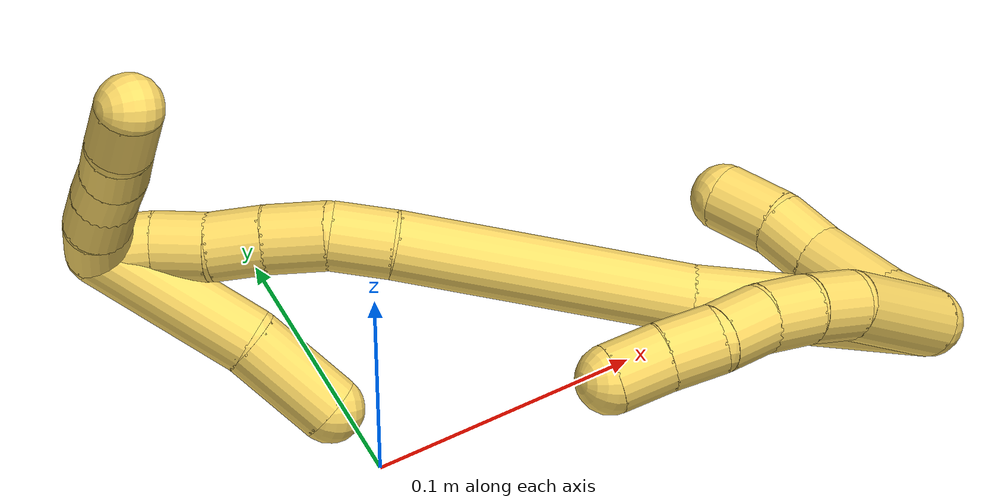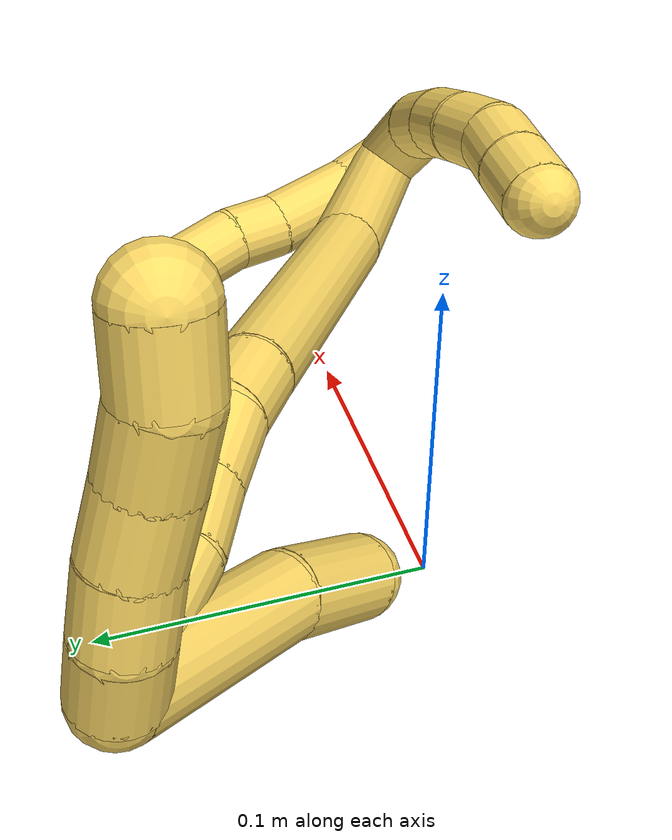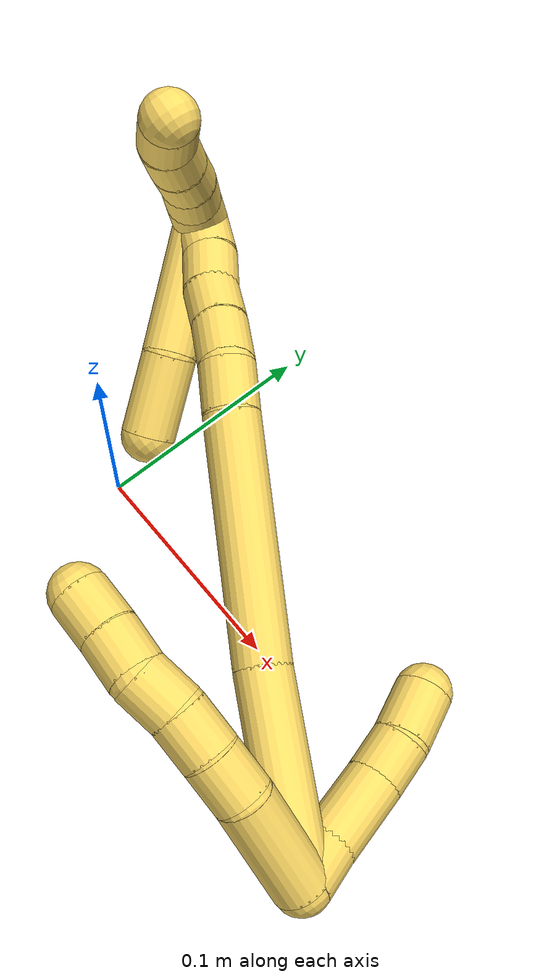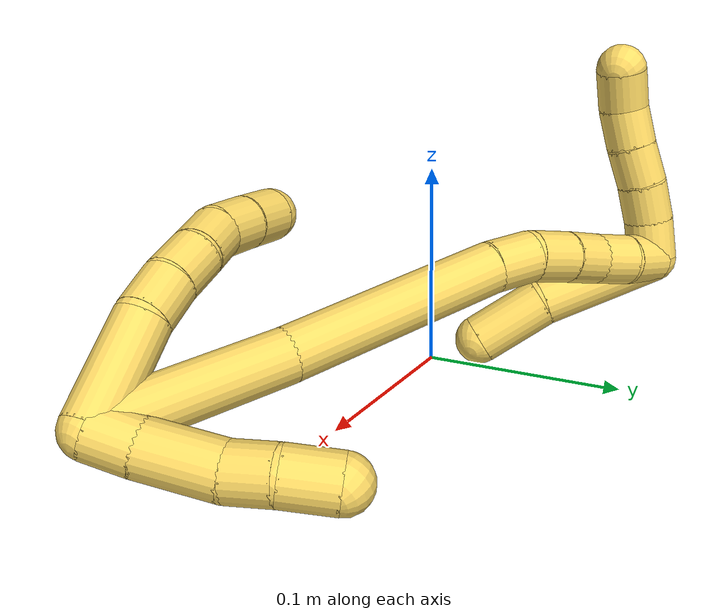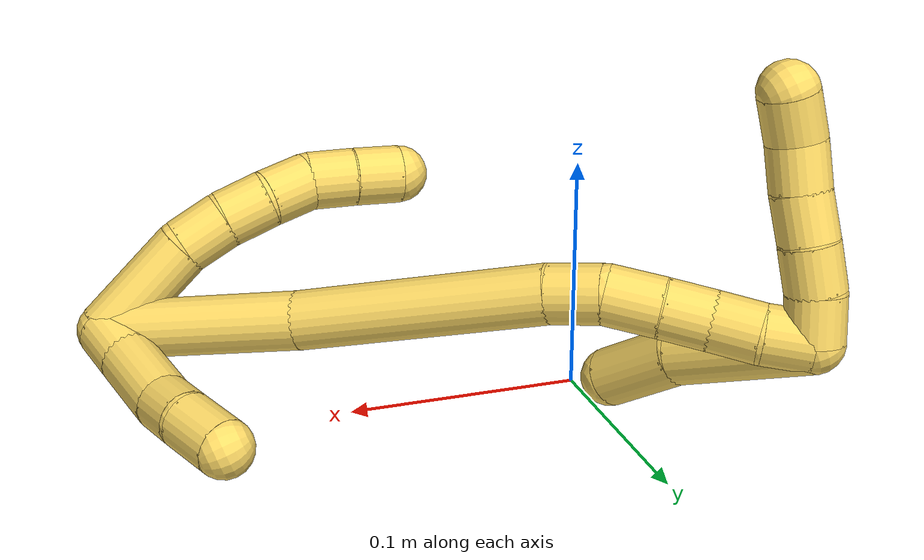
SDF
<sdf version="1.7">
 <world name="default">
  <model name="5">
   <static>0</static>
   <link name="5">
    <collision name="collision-cylinder-e_1_2_8">
     <pose>0.004693 -0.008421 -0.022221 2.77933 0.195005 0.981102</pose>
     <geometry><cylinder><radius>0.0125</radius><length>0.048444</length></cylinder></geometry>
     <surface>
      <friction><ode><mu>1.16</mu><mu2>1.16</mu2><slip1>0</slip1><slip2>0</slip2></ode></friction>
      <contact><ode><kp>1e+06</kp><kd>1</kd><max_vel>0</max_vel><min_depth>0.001</min_depth></ode></contact>
     </surface>
    </collision>
    <visual name="visual-cylinder-e_1_2_8">
     <pose>0.004693 -0.008421 -0.022221 2.77933 0.195005 0.981102</pose>
     <geometry><cylinder><radius>0.0125</radius><length>0.048444</length></cylinder></geometry>
     <material><ambient>1 0.858824 0.4 1</ambient></material>
    </visual>
    <collision name="collision-cylinder-e_2_8_9">
     <pose>0.010659 -0.017921 -0.054813 3.03797 0.121345 1.72838</pose>
     <geometry><cylinder><radius>0.0125</radius><length>0.02101</length></cylinder></geometry>
     <surface>
      <friction><ode><mu>1.16</mu><mu2>1.16</mu2><slip1>0</slip1><slip2>0</slip2></ode></friction>
      <contact><ode><kp>1e+06</kp><kd>1</kd><max_vel>0</max_vel><min_depth>0.001</min_depth></ode></contact>
     </surface>
    </collision>
    <visual name="visual-cylinder-e_2_8_9">
     <pose>0.010659 -0.017921 -0.054813 3.03797 0.121345 1.72838</pose>
     <geometry><cylinder><radius>0.0125</radius><length>0.02101</length></cylinder></geometry>
     <material><ambient>1 0.858824 0.4 1</ambient></material>
    </visual>
    <collision name="collision-cylinder-e_3_9_10">
     <pose>0.012515 -0.01875 -0.075382 -3.11716 0.057271 -2.33535</pose>
     <geometry><cylinder><radius>0.0125</radius><length>0.020433</length></cylinder></geometry>
     <surface>
      <friction><ode><mu>1.16</mu><mu2>1.16</mu2><slip1>0</slip1><slip2>0</slip2></ode></friction>
      <contact><ode><kp>1e+06</kp><kd>1</kd><max_vel>0</max_vel><min_depth>0.001</min_depth></ode></contact>
     </surface>
    </collision>
    <visual name="visual-cylinder-e_3_9_10">
     <pose>0.012515 -0.01875 -0.075382 -3.11716 0.057271 -2.33535</pose>
     <geometry><cylinder><radius>0.0125</radius><length>0.020433</length></cylinder></geometry>
     <material><ambient>1 0.858824 0.4 1</ambient></material>
    </visual>
    <collision name="collision-cylinder-e_4_10_11">
     <pose>0.014581 -0.016701 -0.095332 -2.95903 0.148238 -1.36306</pose>
     <geometry><cylinder><radius>0.0125</radius><length>0.020057</length></cylinder></geometry>
     <surface>
      <friction><ode><mu>1.16</mu><mu2>1.16</mu2><slip1>0</slip1><slip2>0</slip2></ode></friction>
      <contact><ode><kp>1e+06</kp><kd>1</kd><max_vel>0</max_vel><min_depth>0.001</min_depth></ode></contact>
     </surface>
    </collision>
    <visual name="visual-cylinder-e_4_10_11">
     <pose>0.014581 -0.016701 -0.095332 -2.95903 0.148238 -1.36306</pose>
     <geometry><cylinder><radius>0.0125</radius><length>0.020057</length></cylinder></geometry>
     <material><ambient>1 0.858824 0.4 1</ambient></material>
    </visual>
    <collision name="collision-cylinder-e_5_11_12">
     <pose>0.014359 -0.011988 -0.114521 -2.8423 -0.170786 1.03273</pose>
     <geometry><cylinder><radius>0.0125</radius><length>0.020041</length></cylinder></geometry>
     <surface>
      <friction><ode><mu>1.16</mu><mu2>1.16</mu2><slip1>0</slip1><slip2>0</slip2></ode></friction>
      <contact><ode><kp>1e+06</kp><kd>1</kd><max_vel>0</max_vel><min_depth>0.001</min_depth></ode></contact>
     </surface>
    </collision>
    <visual name="visual-cylinder-e_5_11_12">
     <pose>0.014359 -0.011988 -0.114521 -2.8423 -0.170786 1.03273</pose>
     <geometry><cylinder><radius>0.0125</radius><length>0.020041</length></cylinder></geometry>
     <material><ambient>1 0.858824 0.4 1</ambient></material>
    </visual>
    <collision name="collision-cylinder-e_6_12_6">
     <pose>0.011223 -0.005603 -0.133232 -2.78323 -0.143649 0.756228</pose>
     <geometry><cylinder><radius>0.0125</radius><length>0.020015</length></cylinder></geometry>
     <surface>
      <friction><ode><mu>1.16</mu><mu2>1.16</mu2><slip1>0</slip1><slip2>0</slip2></ode></friction>
      <contact><ode><kp>1e+06</kp><kd>1</kd><max_vel>0</max_vel><min_depth>0.001</min_depth></ode></contact>
     </surface>
    </collision>
    <visual name="visual-cylinder-e_6_12_6">
     <pose>0.011223 -0.005603 -0.133232 -2.78323 -0.143649 0.756228</pose>
     <geometry><cylinder><radius>0.0125</radius><length>0.020015</length></cylinder></geometry>
     <material><ambient>1 0.858824 0.4 1</ambient></material>
    </visual>
    <collision name="collision-cylinder-e_1_2_13">
     <pose>-0.010016 0.000208 -0.002149 -3.04506 -1.35851 3.02208</pose>
     <geometry><cylinder><radius>0.0125</radius><length>0.020491</length></cylinder></geometry>
     <surface>
      <friction><ode><mu>1.16</mu><mu2>1.16</mu2><slip1>0</slip1><slip2>0</slip2></ode></friction>
      <contact><ode><kp>1e+06</kp><kd>1</kd><max_vel>0</max_vel><min_depth>0.001</min_depth></ode></contact>
     </surface>
    </collision>
    <visual name="visual-cylinder-e_1_2_13">
     <pose>-0.010016 0.000208 -0.002149 -3.04506 -1.35851 3.02208</pose>
     <geometry><cylinder><radius>0.0125</radius><length>0.020491</length></cylinder></geometry>
     <material><ambient>1 0.858824 0.4 1</ambient></material>
    </visual>
    <collision name="collision-cylinder-e_2_13_14">
     <pose>-0.036974 -0.001531 -0.007826 2.63728 -1.33726 -2.51111</pose>
     <geometry><cylinder><radius>0.0125</radius><length>0.03483</length></cylinder></geometry>
     <surface>
      <friction><ode><mu>1.16</mu><mu2>1.16</mu2><slip1>0</slip1><slip2>0</slip2></ode></friction>
      <contact><ode><kp>1e+06</kp><kd>1</kd><max_vel>0</max_vel><min_depth>0.001</min_depth></ode></contact>
     </surface>
    </collision>
    <visual name="visual-cylinder-e_2_13_14">
     <pose>-0.036974 -0.001531 -0.007826 2.63728 -1.33726 -2.51111</pose>
     <geometry><cylinder><radius>0.0125</radius><length>0.03483</length></cylinder></geometry>
     <material><ambient>1 0.858824 0.4 1</ambient></material>
    </visual>
    <collision name="collision-cylinder-e_3_14_15">
     <pose>-0.063234 -0.006376 -0.014413 2.38323 -1.14618 -2.03529</pose>
     <geometry><cylinder><radius>0.0125</radius><length>0.020453</length></cylinder></geometry>
     <surface>
      <friction><ode><mu>1.16</mu><mu2>1.16</mu2><slip1>0</slip1><slip2>0</slip2></ode></friction>
      <contact><ode><kp>1e+06</kp><kd>1</kd><max_vel>0</max_vel><min_depth>0.001</min_depth></ode></contact>
     </surface>
    </collision>
    <visual name="visual-cylinder-e_3_14_15">
     <pose>-0.063234 -0.006376 -0.014413 2.38323 -1.14618 -2.03529</pose>
     <geometry><cylinder><radius>0.0125</radius><length>0.020453</length></cylinder></geometry>
     <material><ambient>1 0.858824 0.4 1</ambient></material>
    </visual>
    <collision name="collision-cylinder-e_4_15_5">
     <pose>-0.083726 -0.010364 -0.022021 2.90631 -1.17428 -2.79004</pose>
     <geometry><cylinder><radius>0.0125</radius><length>0.024226</length></cylinder></geometry>
     <surface>
      <friction><ode><mu>1.16</mu><mu2>1.16</mu2><slip1>0</slip1><slip2>0</slip2></ode></friction>
      <contact><ode><kp>1e+06</kp><kd>1</kd><max_vel>0</max_vel><min_depth>0.001</min_depth></ode></contact>
     </surface>
    </collision>
    <visual name="visual-cylinder-e_4_15_5">
     <pose>-0.083726 -0.010364 -0.022021 2.90631 -1.17428 -2.79004</pose>
     <geometry><cylinder><radius>0.0125</radius><length>0.024226</length></cylinder></geometry>
     <material><ambient>1 0.858824 0.4 1</ambient></material>
    </visual>
    <collision name="collision-cylinder-e_1_2_16">
     <pose>-0.020863 -0.000264 -0.037641 3.13457 -0.506096 -3.11446</pose>
     <geometry><cylinder><radius>0.0125</radius><length>0.086075</length></cylinder></geometry>
     <surface>
      <friction><ode><mu>1.16</mu><mu2>1.16</mu2><slip1>0</slip1><slip2>0</slip2></ode></friction>
      <contact><ode><kp>1e+06</kp><kd>1</kd><max_vel>0</max_vel><min_depth>0.001</min_depth></ode></contact>
     </surface>
    </collision>
    <visual name="visual-cylinder-e_1_2_16">
     <pose>-0.020863 -0.000264 -0.037641 3.13457 -0.506096 -3.11446</pose>
     <geometry><cylinder><radius>0.0125</radius><length>0.086075</length></cylinder></geometry>
     <material><ambient>1 0.858824 0.4 1</ambient></material>
    </visual>
    <collision name="collision-cylinder-e_2_16_17">
     <pose>-0.067917 -0.005711 -0.121914 3.0309 -0.509131 -2.72201</pose>
     <geometry><cylinder><radius>0.0125</radius><length>0.107468</length></cylinder></geometry>
     <surface>
      <friction><ode><mu>1.16</mu><mu2>1.16</mu2><slip1>0</slip1><slip2>0</slip2></ode></friction>
      <contact><ode><kp>1e+06</kp><kd>1</kd><max_vel>0</max_vel><min_depth>0.001</min_depth></ode></contact>
     </surface>
    </collision>
    <visual name="visual-cylinder-e_2_16_17">
     <pose>-0.067917 -0.005711 -0.121914 3.0309 -0.509131 -2.72201</pose>
     <geometry><cylinder><radius>0.0125</radius><length>0.107468</length></cylinder></geometry>
     <material><ambient>1 0.858824 0.4 1</ambient></material>
    </visual>
    <collision name="collision-cylinder-e_3_17_18">
     <pose>-0.100462 -0.011109 -0.178002 3.11888 -0.591555 -3.06707</pose>
     <geometry><cylinder><radius>0.0125</radius><length>0.022789</length></cylinder></geometry>
     <surface>
      <friction><ode><mu>1.16</mu><mu2>1.16</mu2><slip1>0</slip1><slip2>0</slip2></ode></friction>
      <contact><ode><kp>1e+06</kp><kd>1</kd><max_vel>0</max_vel><min_depth>0.001</min_depth></ode></contact>
     </surface>
    </collision>
    <visual name="visual-cylinder-e_3_17_18">
     <pose>-0.100462 -0.011109 -0.178002 3.11888 -0.591555 -3.06707</pose>
     <geometry><cylinder><radius>0.0125</radius><length>0.022789</length></cylinder></geometry>
     <material><ambient>1 0.858824 0.4 1</ambient></material>
    </visual>
    <collision name="collision-cylinder-e_4_18_19">
     <pose>-0.113845 -0.008606 -0.196126 -2.83771 -0.658524 2.29901</pose>
     <geometry><cylinder><radius>0.0125</radius><length>0.022972</length></cylinder></geometry>
     <surface>
      <friction><ode><mu>1.16</mu><mu2>1.16</mu2><slip1>0</slip1><slip2>0</slip2></ode></friction>
      <contact><ode><kp>1e+06</kp><kd>1</kd><max_vel>0</max_vel><min_depth>0.001</min_depth></ode></contact>
     </surface>
    </collision>
    <visual name="visual-cylinder-e_4_18_19">
     <pose>-0.113845 -0.008606 -0.196126 -2.83771 -0.658524 2.29901</pose>
     <geometry><cylinder><radius>0.0125</radius><length>0.022972</length></cylinder></geometry>
     <material><ambient>1 0.858824 0.4 1</ambient></material>
    </visual>
    <collision name="collision-cylinder-e_5_19_20">
     <pose>-0.12681 -0.002856 -0.212506 -2.76702 -0.621585 2.07554</pose>
     <geometry><cylinder><radius>0.0125</radius><length>0.020386</length></cylinder></geometry>
     <surface>
      <friction><ode><mu>1.16</mu><mu2>1.16</mu2><slip1>0</slip1><slip2>0</slip2></ode></friction>
      <contact><ode><kp>1e+06</kp><kd>1</kd><max_vel>0</max_vel><min_depth>0.001</min_depth></ode></contact>
     </surface>
    </collision>
    <visual name="visual-cylinder-e_5_19_20">
     <pose>-0.12681 -0.002856 -0.212506 -2.76702 -0.621585 2.07554</pose>
     <geometry><cylinder><radius>0.0125</radius><length>0.020386</length></cylinder></geometry>
     <material><ambient>1 0.858824 0.4 1</ambient></material>
    </visual>
    <collision name="collision-cylinder-e_6_20_21">
     <pose>-0.139617 0.001903 -0.227386 -2.90518 -0.750171 2.55569</pose>
     <geometry><cylinder><radius>0.0125</radius><length>0.020157</length></cylinder></geometry>
     <surface>
      <friction><ode><mu>1.16</mu><mu2>1.16</mu2><slip1>0</slip1><slip2>0</slip2></ode></friction>
      <contact><ode><kp>1e+06</kp><kd>1</kd><max_vel>0</max_vel><min_depth>0.001</min_depth></ode></contact>
     </surface>
    </collision>
    <visual name="visual-cylinder-e_6_20_21">
     <pose>-0.139617 0.001903 -0.227386 -2.90518 -0.750171 2.55569</pose>
     <geometry><cylinder><radius>0.0125</radius><length>0.020157</length></cylinder></geometry>
     <material><ambient>1 0.858824 0.4 1</ambient></material>
    </visual>
    <collision name="collision-cylinder-e_7_21_1">
     <pose>-0.151995 0.005958 -0.242665 -2.86204 -0.578225 2.25795</pose>
     <geometry><cylinder><radius>0.0125</radius><length>0.020153</length></cylinder></geometry>
     <surface>
      <friction><ode><mu>1.16</mu><mu2>1.16</mu2><slip1>0</slip1><slip2>0</slip2></ode></friction>
      <contact><ode><kp>1e+06</kp><kd>1</kd><max_vel>0</max_vel><min_depth>0.001</min_depth></ode></contact>
     </surface>
    </collision>
    <visual name="visual-cylinder-e_7_21_1">
     <pose>-0.151995 0.005958 -0.242665 -2.86204 -0.578225 2.25795</pose>
     <geometry><cylinder><radius>0.0125</radius><length>0.020153</length></cylinder></geometry>
     <material><ambient>1 0.858824 0.4 1</ambient></material>
    </visual>
    <collision name="collision-cylinder-e_1_1_22">
     <pose>-0.137632 0.020119 -0.229745 -0.512496 0.68888 -0.187435</pose>
     <geometry><cylinder><radius>0.0125</radius><length>0.062518</length></cylinder></geometry>
     <surface>
      <friction><ode><mu>1.16</mu><mu2>1.16</mu2><slip1>0</slip1><slip2>0</slip2></ode></friction>
      <contact><ode><kp>1e+06</kp><kd>1</kd><max_vel>0</max_vel><min_depth>0.001</min_depth></ode></contact>
     </surface>
    </collision>
    <visual name="visual-cylinder-e_1_1_22">
     <pose>-0.137632 0.020119 -0.229745 -0.512496 0.68888 -0.187435</pose>
     <geometry><cylinder><radius>0.0125</radius><length>0.062518</length></cylinder></geometry>
     <material><ambient>1 0.858824 0.4 1</ambient></material>
    </visual>
    <collision name="collision-cylinder-e_2_22_4">
     <pose>-0.107941 0.042394 -0.196642 -0.713134 0.551547 -0.210041</pose>
     <geometry><cylinder><radius>0.0125</radius><length>0.037482</length></cylinder></geometry>
     <surface>
      <friction><ode><mu>1.16</mu><mu2>1.16</mu2><slip1>0</slip1><slip2>0</slip2></ode></friction>
      <contact><ode><kp>1e+06</kp><kd>1</kd><max_vel>0</max_vel><min_depth>0.001</min_depth></ode></contact>
     </surface>
    </collision>
    <visual name="visual-cylinder-e_2_22_4">
     <pose>-0.107941 0.042394 -0.196642 -0.713134 0.551547 -0.210041</pose>
     <geometry><cylinder><radius>0.0125</radius><length>0.037482</length></cylinder></geometry>
     <material><ambient>1 0.858824 0.4 1</ambient></material>
    </visual>
    <collision name="collision-cylinder-e_1_1_23">
     <pose>-0.152521 0.000506 -0.254603 2.02789 0.52142 0.809688</pose>
     <geometry><cylinder><radius>0.0125</radius><length>0.02</length></cylinder></geometry>
     <surface>
      <friction><ode><mu>1.16</mu><mu2>1.16</mu2><slip1>0</slip1><slip2>0</slip2></ode></friction>
      <contact><ode><kp>1e+06</kp><kd>1</kd><max_vel>0</max_vel><min_depth>0.001</min_depth></ode></contact>
     </surface>
    </collision>
    <visual name="visual-cylinder-e_1_1_23">
     <pose>-0.152521 0.000506 -0.254603 2.02789 0.52142 0.809688</pose>
     <geometry><cylinder><radius>0.0125</radius><length>0.02</length></cylinder></geometry>
     <material><ambient>1 0.858824 0.4 1</ambient></material>
    </visual>
    <collision name="collision-cylinder-e_2_23_24">
     <pose>-0.141986 -0.015302 -0.260605 1.83547 0.588833 0.754718</pose>
     <geometry><cylinder><radius>0.0125</radius><length>0.02</length></cylinder></geometry>
     <surface>
      <friction><ode><mu>1.16</mu><mu2>1.16</mu2><slip1>0</slip1><slip2>0</slip2></ode></friction>
      <contact><ode><kp>1e+06</kp><kd>1</kd><max_vel>0</max_vel><min_depth>0.001</min_depth></ode></contact>
     </surface>
    </collision>
    <visual name="visual-cylinder-e_2_23_24">
     <pose>-0.141986 -0.015302 -0.260605 1.83547 0.588833 0.754718</pose>
     <geometry><cylinder><radius>0.0125</radius><length>0.02</length></cylinder></geometry>
     <material><ambient>1 0.858824 0.4 1</ambient></material>
    </visual>
    <collision name="collision-cylinder-e_3_24_25">
     <pose>-0.13011 -0.030727 -0.265079 1.87199 0.684397 0.900977</pose>
     <geometry><cylinder><radius>0.0125</radius><length>0.02</length></cylinder></geometry>
     <surface>
      <friction><ode><mu>1.16</mu><mu2>1.16</mu2><slip1>0</slip1><slip2>0</slip2></ode></friction>
      <contact><ode><kp>1e+06</kp><kd>1</kd><max_vel>0</max_vel><min_depth>0.001</min_depth></ode></contact>
     </surface>
    </collision>
    <visual name="visual-cylinder-e_3_24_25">
     <pose>-0.13011 -0.030727 -0.265079 1.87199 0.684397 0.900977</pose>
     <geometry><cylinder><radius>0.0125</radius><length>0.02</length></cylinder></geometry>
     <material><ambient>1 0.858824 0.4 1</ambient></material>
    </visual>
    <collision name="collision-cylinder-e_4_25_26">
     <pose>-0.11791 -0.045668 -0.270304 1.94103 0.62841 0.886443</pose>
     <geometry><cylinder><radius>0.0125</radius><length>0.02</length></cylinder></geometry>
     <surface>
      <friction><ode><mu>1.16</mu><mu2>1.16</mu2><slip1>0</slip1><slip2>0</slip2></ode></friction>
      <contact><ode><kp>1e+06</kp><kd>1</kd><max_vel>0</max_vel><min_depth>0.001</min_depth></ode></contact>
     </surface>
    </collision>
    <visual name="visual-cylinder-e_4_25_26">
     <pose>-0.11791 -0.045668 -0.270304 1.94103 0.62841 0.886443</pose>
     <geometry><cylinder><radius>0.0125</radius><length>0.02</length></cylinder></geometry>
     <material><ambient>1 0.858824 0.4 1</ambient></material>
    </visual>
    <collision name="collision-cylinder-e_5_26_3">
     <pose>-0.107785 -0.062166 -0.274558 1.71786 0.43849 0.505486</pose>
     <geometry><cylinder><radius>0.0125</radius><length>0.02</length></cylinder></geometry>
     <surface>
      <friction><ode><mu>1.16</mu><mu2>1.16</mu2><slip1>0</slip1><slip2>0</slip2></ode></friction>
      <contact><ode><kp>1e+06</kp><kd>1</kd><max_vel>0</max_vel><min_depth>0.001</min_depth></ode></contact>
     </surface>
    </collision>
    <visual name="visual-cylinder-e_5_26_3">
     <pose>-0.107785 -0.062166 -0.274558 1.71786 0.43849 0.505486</pose>
     <geometry><cylinder><radius>0.0125</radius><length>0.02</length></cylinder></geometry>
     <material><ambient>1 0.858824 0.4 1</ambient></material>
    </visual>
    <collision name="collision-sphere-3">
     <pose>-0.103539 -0.071122 -0.275885 0 -0 0</pose>
     <geometry><sphere><radius>0.0125</radius></sphere></geometry>
     <surface>
      <friction><ode><mu>1.16</mu><mu2>1.16</mu2><slip1>0</slip1><slip2>0</slip2></ode></friction>
      <contact><ode><kp>1e+06</kp><kd>1</kd><max_vel>0</max_vel><min_depth>0.001</min_depth></ode></contact>
     </surface>
    </collision>
    <visual name="visual-sphere-3">
     <pose>-0.103539 -0.071122 -0.275885 0 -0 0</pose>
     <geometry><sphere><radius>0.0125</radius></sphere></geometry>
     <material><ambient>1 0.858824 0.4 1</ambient></material>
    </visual>
    <collision name="collision-sphere-26">
     <pose>-0.112031 -0.053209 -0.273231 0 -0 0</pose>
     <geometry><sphere><radius>0.0125</radius></sphere></geometry>
     <surface>
      <friction><ode><mu>1.16</mu><mu2>1.16</mu2><slip1>0</slip1><slip2>0</slip2></ode></friction>
      <contact><ode><kp>1e+06</kp><kd>1</kd><max_vel>0</max_vel><min_depth>0.001</min_depth></ode></contact>
     </surface>
    </collision>
    <visual name="visual-sphere-26">
     <pose>-0.112031 -0.053209 -0.273231 0 -0 0</pose>
     <geometry><sphere><radius>0.0125</radius></sphere></geometry>
     <material><ambient>1 0.858824 0.4 1</ambient></material>
    </visual>
    <collision name="collision-sphere-25">
     <pose>-0.123788 -0.038126 -0.267377 0 -0 0</pose>
     <geometry><sphere><radius>0.0125</radius></sphere></geometry>
     <surface>
      <friction><ode><mu>1.16</mu><mu2>1.16</mu2><slip1>0</slip1><slip2>0</slip2></ode></friction>
      <contact><ode><kp>1e+06</kp><kd>1</kd><max_vel>0</max_vel><min_depth>0.001</min_depth></ode></contact>
     </surface>
    </collision>
    <visual name="visual-sphere-25">
     <pose>-0.123788 -0.038126 -0.267377 0 -0 0</pose>
     <geometry><sphere><radius>0.0125</radius></sphere></geometry>
     <material><ambient>1 0.858824 0.4 1</ambient></material>
    </visual>
    <collision name="collision-sphere-24">
     <pose>-0.136432 -0.023328 -0.26278 0 -0 0</pose>
     <geometry><sphere><radius>0.0125</radius></sphere></geometry>
     <surface>
      <friction><ode><mu>1.16</mu><mu2>1.16</mu2><slip1>0</slip1><slip2>0</slip2></ode></friction>
      <contact><ode><kp>1e+06</kp><kd>1</kd><max_vel>0</max_vel><min_depth>0.001</min_depth></ode></contact>
     </surface>
    </collision>
    <visual name="visual-sphere-24">
     <pose>-0.136432 -0.023328 -0.26278 0 -0 0</pose>
     <geometry><sphere><radius>0.0125</radius></sphere></geometry>
     <material><ambient>1 0.858824 0.4 1</ambient></material>
    </visual>
    <collision name="collision-sphere-23">
     <pose>-0.14754 -0.007275 -0.258429 0 -0 0</pose>
     <geometry><sphere><radius>0.0125</radius></sphere></geometry>
     <surface>
      <friction><ode><mu>1.16</mu><mu2>1.16</mu2><slip1>0</slip1><slip2>0</slip2></ode></friction>
      <contact><ode><kp>1e+06</kp><kd>1</kd><max_vel>0</max_vel><min_depth>0.001</min_depth></ode></contact>
     </surface>
    </collision>
    <visual name="visual-sphere-23">
     <pose>-0.14754 -0.007275 -0.258429 0 -0 0</pose>
     <geometry><sphere><radius>0.0125</radius></sphere></geometry>
     <material><ambient>1 0.858824 0.4 1</ambient></material>
    </visual>
    <collision name="collision-sphere-4">
     <pose>-0.09812 0.052837 -0.18457 0 -0 0</pose>
     <geometry><sphere><radius>0.0125</radius></sphere></geometry>
     <surface>
      <friction><ode><mu>1.16</mu><mu2>1.16</mu2><slip1>0</slip1><slip2>0</slip2></ode></friction>
      <contact><ode><kp>1e+06</kp><kd>1</kd><max_vel>0</max_vel><min_depth>0.001</min_depth></ode></contact>
     </surface>
    </collision>
    <visual name="visual-sphere-4">
     <pose>-0.09812 0.052837 -0.18457 0 -0 0</pose>
     <geometry><sphere><radius>0.0125</radius></sphere></geometry>
     <material><ambient>1 0.858824 0.4 1</ambient></material>
    </visual>
    <collision name="collision-sphere-22">
     <pose>-0.117761 0.031952 -0.208714 0 -0 0</pose>
     <geometry><sphere><radius>0.0125</radius></sphere></geometry>
     <surface>
      <friction><ode><mu>1.16</mu><mu2>1.16</mu2><slip1>0</slip1><slip2>0</slip2></ode></friction>
      <contact><ode><kp>1e+06</kp><kd>1</kd><max_vel>0</max_vel><min_depth>0.001</min_depth></ode></contact>
     </surface>
    </collision>
    <visual name="visual-sphere-22">
     <pose>-0.117761 0.031952 -0.208714 0 -0 0</pose>
     <geometry><sphere><radius>0.0125</radius></sphere></geometry>
     <material><ambient>1 0.858824 0.4 1</ambient></material>
    </visual>
    <collision name="collision-sphere-1">
     <pose>-0.157502 0.008287 -0.250776 0 -0 0</pose>
     <geometry><sphere><radius>0.0125</radius></sphere></geometry>
     <surface>
      <friction><ode><mu>1.16</mu><mu2>1.16</mu2><slip1>0</slip1><slip2>0</slip2></ode></friction>
      <contact><ode><kp>1e+06</kp><kd>1</kd><max_vel>0</max_vel><min_depth>0.001</min_depth></ode></contact>
     </surface>
    </collision>
    <visual name="visual-sphere-1">
     <pose>-0.157502 0.008287 -0.250776 0 -0 0</pose>
     <geometry><sphere><radius>0.0125</radius></sphere></geometry>
     <material><ambient>1 0.858824 0.4 1</ambient></material>
    </visual>
    <collision name="collision-sphere-21">
     <pose>-0.146488 0.00363 -0.234554 0 -0 0</pose>
     <geometry><sphere><radius>0.0125</radius></sphere></geometry>
     <surface>
      <friction><ode><mu>1.16</mu><mu2>1.16</mu2><slip1>0</slip1><slip2>0</slip2></ode></friction>
      <contact><ode><kp>1e+06</kp><kd>1</kd><max_vel>0</max_vel><min_depth>0.001</min_depth></ode></contact>
     </surface>
    </collision>
    <visual name="visual-sphere-21">
     <pose>-0.146488 0.00363 -0.234554 0 -0 0</pose>
     <geometry><sphere><radius>0.0125</radius></sphere></geometry>
     <material><ambient>1 0.858824 0.4 1</ambient></material>
    </visual>
    <collision name="collision-sphere-12">
     <pose>0.012656 -0.009077 -0.123957 0 -0 0</pose>
     <geometry><sphere><radius>0.0125</radius></sphere></geometry>
     <surface>
      <friction><ode><mu>1.16</mu><mu2>1.16</mu2><slip1>0</slip1><slip2>0</slip2></ode></friction>
      <contact><ode><kp>1e+06</kp><kd>1</kd><max_vel>0</max_vel><min_depth>0.001</min_depth></ode></contact>
     </surface>
    </collision>
    <visual name="visual-sphere-12">
     <pose>0.012656 -0.009077 -0.123957 0 -0 0</pose>
     <geometry><sphere><radius>0.0125</radius></sphere></geometry>
     <material><ambient>1 0.858824 0.4 1</ambient></material>
    </visual>
    <collision name="collision-sphere-11">
     <pose>0.016062 -0.0149 -0.105085 0 -0 0</pose>
     <geometry><sphere><radius>0.0125</radius></sphere></geometry>
     <surface>
      <friction><ode><mu>1.16</mu><mu2>1.16</mu2><slip1>0</slip1><slip2>0</slip2></ode></friction>
      <contact><ode><kp>1e+06</kp><kd>1</kd><max_vel>0</max_vel><min_depth>0.001</min_depth></ode></contact>
     </surface>
    </collision>
    <visual name="visual-sphere-11">
     <pose>0.016062 -0.0149 -0.105085 0 -0 0</pose>
     <geometry><sphere><radius>0.0125</radius></sphere></geometry>
     <material><ambient>1 0.858824 0.4 1</ambient></material>
    </visual>
    <collision name="collision-sphere-10">
     <pose>0.0131 -0.018501 -0.085578 0 -0 0</pose>
     <geometry><sphere><radius>0.0125</radius></sphere></geometry>
     <surface>
      <friction><ode><mu>1.16</mu><mu2>1.16</mu2><slip1>0</slip1><slip2>0</slip2></ode></friction>
      <contact><ode><kp>1e+06</kp><kd>1</kd><max_vel>0</max_vel><min_depth>0.001</min_depth></ode></contact>
     </surface>
    </collision>
    <visual name="visual-sphere-10">
     <pose>0.0131 -0.018501 -0.085578 0 -0 0</pose>
     <geometry><sphere><radius>0.0125</radius></sphere></geometry>
     <material><ambient>1 0.858824 0.4 1</ambient></material>
    </visual>
    <collision name="collision-sphere-9">
     <pose>0.01193 -0.019 -0.065185 0 -0 0</pose>
     <geometry><sphere><radius>0.0125</radius></sphere></geometry>
     <surface>
      <friction><ode><mu>1.16</mu><mu2>1.16</mu2><slip1>0</slip1><slip2>0</slip2></ode></friction>
      <contact><ode><kp>1e+06</kp><kd>1</kd><max_vel>0</max_vel><min_depth>0.001</min_depth></ode></contact>
     </surface>
    </collision>
    <visual name="visual-sphere-9">
     <pose>0.01193 -0.019 -0.065185 0 -0 0</pose>
     <geometry><sphere><radius>0.0125</radius></sphere></geometry>
     <material><ambient>1 0.858824 0.4 1</ambient></material>
    </visual>
    <collision name="collision-sphere-2">
     <geometry><sphere><radius>0.0125</radius></sphere></geometry>
     <surface>
      <friction><ode><mu>1.16</mu><mu2>1.16</mu2><slip1>0</slip1><slip2>0</slip2></ode></friction>
      <contact><ode><kp>1e+06</kp><kd>1</kd><max_vel>0</max_vel><min_depth>0.001</min_depth></ode></contact>
     </surface>
    </collision>
    <visual name="visual-sphere-2">
     <geometry><sphere><radius>0.0125</radius></sphere></geometry>
     <material><ambient>1 0.858824 0.4 1</ambient></material>
    </visual>
    <collision name="collision-sphere-19">
     <pose>-0.120874 -0.005888 -0.204794 0 -0 0</pose>
     <geometry><sphere><radius>0.0125</radius></sphere></geometry>
     <surface>
      <friction><ode><mu>1.16</mu><mu2>1.16</mu2><slip1>0</slip1><slip2>0</slip2></ode></friction>
      <contact><ode><kp>1e+06</kp><kd>1</kd><max_vel>0</max_vel><min_depth>0.001</min_depth></ode></contact>
     </surface>
    </collision>
    <visual name="visual-sphere-19">
     <pose>-0.120874 -0.005888 -0.204794 0 -0 0</pose>
     <geometry><sphere><radius>0.0125</radius></sphere></geometry>
     <material><ambient>1 0.858824 0.4 1</ambient></material>
    </visual>
    <collision name="collision-sphere-8">
     <pose>0.009387 -0.016842 -0.044441 0 -0 0</pose>
     <geometry><sphere><radius>0.0125</radius></sphere></geometry>
     <surface>
      <friction><ode><mu>1.16</mu><mu2>1.16</mu2><slip1>0</slip1><slip2>0</slip2></ode></friction>
      <contact><ode><kp>1e+06</kp><kd>1</kd><max_vel>0</max_vel><min_depth>0.001</min_depth></ode></contact>
     </surface>
    </collision>
    <visual name="visual-sphere-8">
     <pose>0.009387 -0.016842 -0.044441 0 -0 0</pose>
     <geometry><sphere><radius>0.0125</radius></sphere></geometry>
     <material><ambient>1 0.858824 0.4 1</ambient></material>
    </visual>
    <collision name="collision-sphere-6">
     <pose>0.009791 -0.002129 -0.142508 0 -0 0</pose>
     <geometry><sphere><radius>0.0125</radius></sphere></geometry>
     <surface>
      <friction><ode><mu>1.16</mu><mu2>1.16</mu2><slip1>0</slip1><slip2>0</slip2></ode></friction>
      <contact><ode><kp>1e+06</kp><kd>1</kd><max_vel>0</max_vel><min_depth>0.001</min_depth></ode></contact>
     </surface>
    </collision>
    <visual name="visual-sphere-6">
     <pose>0.009791 -0.002129 -0.142508 0 -0 0</pose>
     <geometry><sphere><radius>0.0125</radius></sphere></geometry>
     <material><ambient>1 0.858824 0.4 1</ambient></material>
    </visual>
    <collision name="collision-sphere-13">
     <pose>-0.020031 0.000416 -0.004297 0 -0 0</pose>
     <geometry><sphere><radius>0.0125</radius></sphere></geometry>
     <surface>
      <friction><ode><mu>1.16</mu><mu2>1.16</mu2><slip1>0</slip1><slip2>0</slip2></ode></friction>
      <contact><ode><kp>1e+06</kp><kd>1</kd><max_vel>0</max_vel><min_depth>0.001</min_depth></ode></contact>
     </surface>
    </collision>
    <visual name="visual-sphere-13">
     <pose>-0.020031 0.000416 -0.004297 0 -0 0</pose>
     <geometry><sphere><radius>0.0125</radius></sphere></geometry>
     <material><ambient>1 0.858824 0.4 1</ambient></material>
    </visual>
    <collision name="collision-sphere-14">
     <pose>-0.053916 -0.003479 -0.011354 0 -0 0</pose>
     <geometry><sphere><radius>0.0125</radius></sphere></geometry>
     <surface>
      <friction><ode><mu>1.16</mu><mu2>1.16</mu2><slip1>0</slip1><slip2>0</slip2></ode></friction>
      <contact><ode><kp>1e+06</kp><kd>1</kd><max_vel>0</max_vel><min_depth>0.001</min_depth></ode></contact>
     </surface>
    </collision>
    <visual name="visual-sphere-14">
     <pose>-0.053916 -0.003479 -0.011354 0 -0 0</pose>
     <geometry><sphere><radius>0.0125</radius></sphere></geometry>
     <material><ambient>1 0.858824 0.4 1</ambient></material>
    </visual>
    <collision name="collision-sphere-15">
     <pose>-0.072552 -0.009274 -0.017471 0 -0 0</pose>
     <geometry><sphere><radius>0.0125</radius></sphere></geometry>
     <surface>
      <friction><ode><mu>1.16</mu><mu2>1.16</mu2><slip1>0</slip1><slip2>0</slip2></ode></friction>
      <contact><ode><kp>1e+06</kp><kd>1</kd><max_vel>0</max_vel><min_depth>0.001</min_depth></ode></contact>
     </surface>
    </collision>
    <visual name="visual-sphere-15">
     <pose>-0.072552 -0.009274 -0.017471 0 -0 0</pose>
     <geometry><sphere><radius>0.0125</radius></sphere></geometry>
     <material><ambient>1 0.858824 0.4 1</ambient></material>
    </visual>
    <collision name="collision-sphere-5">
     <pose>-0.094899 -0.011455 -0.02657 0 -0 0</pose>
     <geometry><sphere><radius>0.0125</radius></sphere></geometry>
     <surface>
      <friction><ode><mu>1.16</mu><mu2>1.16</mu2><slip1>0</slip1><slip2>0</slip2></ode></friction>
      <contact><ode><kp>1e+06</kp><kd>1</kd><max_vel>0</max_vel><min_depth>0.001</min_depth></ode></contact>
     </surface>
    </collision>
    <visual name="visual-sphere-5">
     <pose>-0.094899 -0.011455 -0.02657 0 -0 0</pose>
     <geometry><sphere><radius>0.0125</radius></sphere></geometry>
     <material><ambient>1 0.858824 0.4 1</ambient></material>
    </visual>
    <collision name="collision-sphere-16">
     <pose>-0.041726 -0.000528 -0.075283 0 -0 0</pose>
     <geometry><sphere><radius>0.0125</radius></sphere></geometry>
     <surface>
      <friction><ode><mu>1.16</mu><mu2>1.16</mu2><slip1>0</slip1><slip2>0</slip2></ode></friction>
      <contact><ode><kp>1e+06</kp><kd>1</kd><max_vel>0</max_vel><min_depth>0.001</min_depth></ode></contact>
     </surface>
    </collision>
    <visual name="visual-sphere-16">
     <pose>-0.041726 -0.000528 -0.075283 0 -0 0</pose>
     <geometry><sphere><radius>0.0125</radius></sphere></geometry>
     <material><ambient>1 0.858824 0.4 1</ambient></material>
    </visual>
    <collision name="collision-sphere-17">
     <pose>-0.094108 -0.010895 -0.168546 0 -0 0</pose>
     <geometry><sphere><radius>0.0125</radius></sphere></geometry>
     <surface>
      <friction><ode><mu>1.16</mu><mu2>1.16</mu2><slip1>0</slip1><slip2>0</slip2></ode></friction>
      <contact><ode><kp>1e+06</kp><kd>1</kd><max_vel>0</max_vel><min_depth>0.001</min_depth></ode></contact>
     </surface>
    </collision>
    <visual name="visual-sphere-17">
     <pose>-0.094108 -0.010895 -0.168546 0 -0 0</pose>
     <geometry><sphere><radius>0.0125</radius></sphere></geometry>
     <material><ambient>1 0.858824 0.4 1</ambient></material>
    </visual>
    <collision name="collision-sphere-18">
     <pose>-0.106816 -0.011324 -0.187458 0 -0 0</pose>
     <geometry><sphere><radius>0.0125</radius></sphere></geometry>
     <surface>
      <friction><ode><mu>1.16</mu><mu2>1.16</mu2><slip1>0</slip1><slip2>0</slip2></ode></friction>
      <contact><ode><kp>1e+06</kp><kd>1</kd><max_vel>0</max_vel><min_depth>0.001</min_depth></ode></contact>
     </surface>
    </collision>
    <visual name="visual-sphere-18">
     <pose>-0.106816 -0.011324 -0.187458 0 -0 0</pose>
     <geometry><sphere><radius>0.0125</radius></sphere></geometry>
     <material><ambient>1 0.858824 0.4 1</ambient></material>
    </visual>
    <collision name="collision-sphere-20">
     <pose>-0.132745 0.000176 -0.220218 0 -0 0</pose>
     <geometry><sphere><radius>0.0125</radius></sphere></geometry>
     <surface>
      <friction><ode><mu>1.16</mu><mu2>1.16</mu2><slip1>0</slip1><slip2>0</slip2></ode></friction>
      <contact><ode><kp>1e+06</kp><kd>1</kd><max_vel>0</max_vel><min_depth>0.001</min_depth></ode></contact>
     </surface>
    </collision>
    <visual name="visual-sphere-20">
     <pose>-0.132745 0.000176 -0.220218 0 -0 0</pose>
     <geometry><sphere><radius>0.0125</radius></sphere></geometry>
     <material><ambient>1 0.858824 0.4 1</ambient></material>
    </visual>
    <inertial>
     <pose>-0.068562 -0.004657 -0.131645 0 -0 0</pose>
     <mass>0.75</mass>
     <inertia>
      <ixx>-0.000146</ixx>
      <ixy>0</ixy>
      <ixz>0</ixz>
      <iyy>0.000164</iyy>
      <iyz>0</iyz>
      <izz>4.8e-05</izz>
     </inertia>
    </inertial>
   </link>
   <pose>0.192909 -0.053301 0.028512 -1.95843 -0.379887 -1.45973</pose>
  </model>
 </world>
</sdf>
